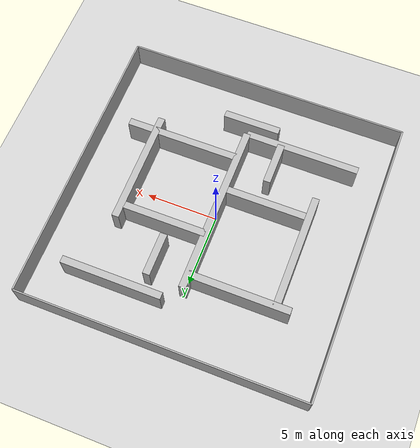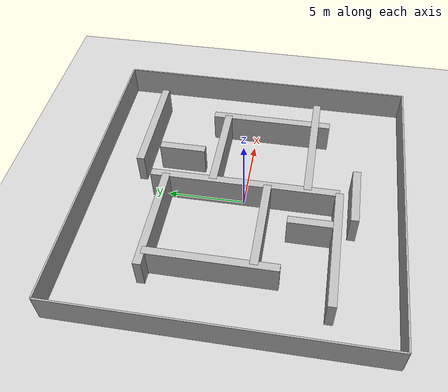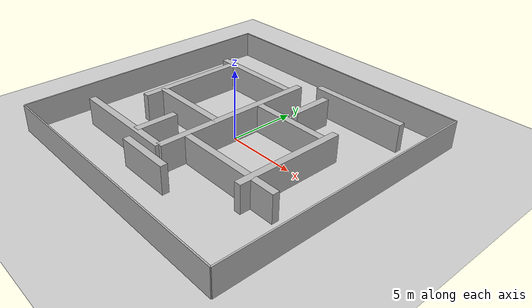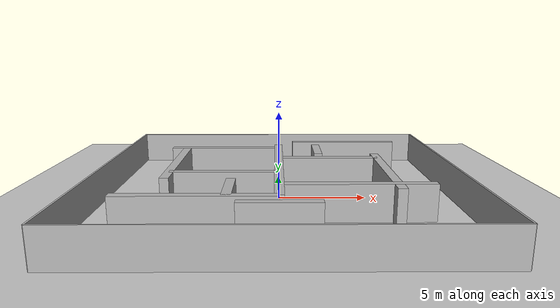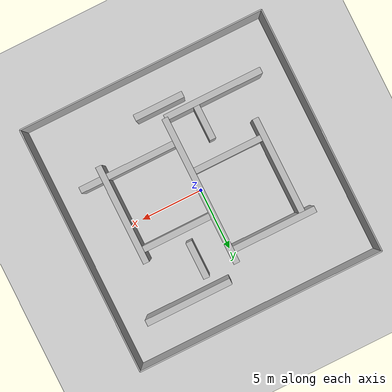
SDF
<?xml version="1.0" ?>
<sdf version="1.6">
  <world name="pursuit_world">
    <gui fullscreen="0">
      <camera name="user_camera">
        <pose>0 0 15 0 1.5707 1.5707</pose>
        <view_controller>orbit</view_controller>
        <projection_type>orthographic</projection_type>
      </camera>
    </gui>
    <physics name="1ms" type="ignored">
      <max_step_size>0.001</max_step_size>
      <real_time_factor>15.0</real_time_factor>
      <real_time_update_rate>1000</real_time_update_rate>
    </physics>
    <plugin
      filename="gz-sim-physics-system"
      name="gz::sim::systems::Physics">
    </plugin>
    <plugin
      filename="gz-sim-user-commands-system"
      name="gz::sim::systems::UserCommands">
    </plugin>
    <plugin
      filename="gz-sim-scene-broadcaster-system"
      name="gz::sim::systems::SceneBroadcaster">
    </plugin>
    <plugin
      filename="gz-sim-contact-system"
      name="gz::sim::systems::Contact">
    </plugin>
    <plugin
      filename="gz-sim-sensors-system"
      name="gz::sim::systems::Sensors">
		    <render_engine>ogre2</render_engine>
		</plugin>

    <light type="directional" name="sun">
      <cast_shadows>true</cast_shadows>
      <pose>0 0 10 0 0 0</pose>
      <diffuse>0.8 0.8 0.8 1</diffuse>
      <specular>0.2 0.2 0.2 1</specular>
      <attenuation>
        <range>1000</range>
        <constant>0.9</constant>
        <linear>0.01</linear>
        <quadratic>0.001</quadratic>
      </attenuation>
      <direction>-0.5 0.1 -0.9</direction>
    </light>

    <model name="ground_plane">
      <static>true</static>
      <link name="link">
        <collision name="collision">
          <geometry>
            <plane>
              <normal>0 0 1</normal>
              <size>100 100</size>
            </plane>
          </geometry>
        </collision>
        <visual name="visual">
          <geometry>
            <plane>
              <normal>0 0 1</normal>
              <size>100 100</size>
            </plane>
          </geometry>
          <material>
            <ambient>0.8 0.8 0.8 1</ambient>
            <diffuse>0.8 0.8 0.8 1</diffuse>
            <specular>0.8 0.8 0.8 1</specular>
          </material>
        </visual>
      </link>
    </model>

<model name="obstacles">
  <static>true</static>

  <!-- Central vertical spine -->
  <link name="maze_1">
    <pose>0 0 1 0 0 0</pose>
    <collision name="collision">
      <geometry>
        <box><size>0.5 12 2</size></box>
      </geometry>
    </collision>
    <visual name="visual">
      <geometry>
        <box><size>0.5 12 2</size></box>
      </geometry>
    </visual>
  </link>

  <!-- Upper left branch -->
  <link name="maze_2">
    <pose>-3.5 5 1 0 0 0</pose>
    <collision name="collision">
      <geometry>
        <box><size>7 0.5 2</size></box>
      </geometry>
    </collision>
    <visual name="visual">
      <geometry>
        <box><size>7 0.5 2</size></box>
      </geometry>
    </visual>
  </link>

  <!-- Upper right branch -->
  <link name="maze_3">
    <pose>4.5 7 1 0 0 0</pose>
    <collision name="collision">
      <geometry>
        <box><size>7 0.5 2</size></box>
      </geometry>
    </collision>
    <visual name="visual">
      <geometry>
        <box><size>7 0.5 2</size></box>
      </geometry>
    </visual>
  </link>

  <!-- Left vertical -->
  <link name="maze_4">
    <pose>-6 1 1 0 0 0</pose>
    <collision name="collision">
      <geometry>
        <box><size>0.5 8 2</size></box>
      </geometry>
    </collision>
    <visual name="visual">
      <geometry>
        <box><size>0.5 8 2</size></box>
      </geometry>
    </visual>
  </link>

  <!-- Right vertical -->
  <link name="maze_5">
    <pose>6 -1 1 0 0 0</pose>
    <collision name="collision">
      <geometry>
        <box><size>0.5 8 2</size></box>
      </geometry>
    </collision>
    <visual name="visual">
      <geometry>
        <box><size>0.5 8 2</size></box>
      </geometry>
    </visual>
  </link>

  <!-- Middle horizontal left -->
  <link name="maze_6">
    <pose>-3 -1.5 1 0 0 0</pose>
    <collision name="collision">
      <geometry>
        <box><size>6 0.5 2</size></box>
      </geometry>
    </collision>
    <visual name="visual">
      <geometry>
        <box><size>6 0.5 2</size></box>
      </geometry>
    </visual>
  </link>

  <!-- Middle horizontal right -->
  <link name="maze_7">
    <pose>3 2 1 0 0 0</pose>
    <collision name="collision">
      <geometry>
        <box><size>6 0.5 2</size></box>
      </geometry>
    </collision>
    <visual name="visual">
      <geometry>
        <box><size>6 0.5 2</size></box>
      </geometry>
    </visual>
  </link>

  <!-- Lower left branch -->
  <link name="maze_8">
    <pose>-4 -6 1 0 0 0</pose>
    <collision name="collision">
      <geometry>
        <box><size>8 0.5 2</size></box>
      </geometry>
    </collision>
    <visual name="visual">
      <geometry>
        <box><size>8 0.5 2</size></box>
      </geometry>
    </visual>
  </link>

  <!-- Lower right branch -->
  <link name="maze_9">
    <pose>4 -4 1 0 0 0</pose>
    <collision name="collision">
      <geometry>
        <box><size>8 0.5 2</size></box>
      </geometry>
    </collision>
    <visual name="visual">
      <geometry>
        <box><size>8 0.5 2</size></box>
      </geometry>
    </visual>
  </link>

  <!-- Lower center blocker -->
  <link name="maze_10">
    <pose>0 -7 1 0 0 0</pose>
    <collision name="collision">
      <geometry>
        <box><size>4 0.5 2</size></box>
      </geometry>
    </collision>
    <visual name="visual">
      <geometry>
        <box><size>4 0.5 2</size></box>
      </geometry>
    </visual>
  </link>

  <!-- Small dead-end wall -->
  <link name="maze_11">
    <pose>2.5 4.5 1 0 0 0</pose>
    <collision name="collision">
      <geometry>
        <box><size>0.5 3 2</size></box>
      </geometry>
    </collision>
    <visual name="visual">
      <geometry>
        <box><size>0.5 3 2</size></box>
      </geometry>
    </visual>
  </link>

  <!-- Small dead-end wall -->
  <link name="maze_12">
    <pose>-2.5 -4.5 1 0 0 0</pose>
    <collision name="collision">
      <geometry>
        <box><size>0.5 3 2</size></box>
      </geometry>
    </collision>
    <visual name="visual">
      <geometry>
        <box><size>0.5 3 2</size></box>
      </geometry>
    </visual>
  </link>

</model>

    <model name="bounding_walls">
      <static>true</static>

      <!-- North Wall -->
      <link name="north_wall">
        <pose>0 10 1 0 0 0</pose>
        <collision name="collision">
          <geometry>
            <box>
              <size>20 0.1 2</size>
            </box>
          </geometry>
        </collision>
        <visual name="visual">
          <geometry>
            <box>
              <size>20 0.1 2</size>
            </box>
          </geometry>
        </visual>
      </link>

      <!-- South Wall -->
      <link name="south_wall">
        <pose>0 -10 1 0 0 0</pose>
        <collision name="collision">
          <geometry>
            <box>
              <size>20 0.1 2</size>
            </box>
          </geometry>
        </collision>
        <visual name="visual">
          <geometry>
            <box>
              <size>20 0.1 2</size>
            </box>
          </geometry>
        </visual>
      </link>

      <!-- East Wall -->
      <link name="east_wall">
        <pose>10 0 1 0 0 1.5707</pose>
        <collision name="collision">
          <geometry>
            <box>
              <size>20 0.1 2</size>
            </box>
          </geometry>
        </collision>
        <visual name="visual">
          <geometry>
            <box>
              <size>20 0.1 2</size>
            </box>
          </geometry>
        </visual>
      </link>

      <!-- West Wall -->
      <link name="west_wall">
        <pose>-10 0 1 0 0 1.5707</pose>
        <collision name="collision">
          <geometry>
            <box>
              <size>20 0.1 2</size>
            </box>
          </geometry>
        </collision>
        <visual name="visual">
          <geometry>
            <box>
              <size>20 0.1 2</size>
            </box>
          </geometry>
        </visual>
      </link>
    </model>
  </world>
</sdf>
